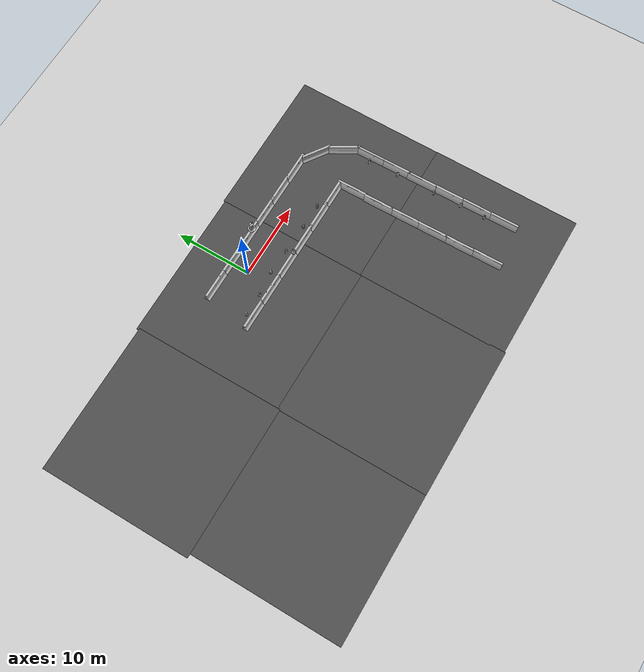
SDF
<sdf version="1.7">
 <world name="default">
  <light name="sun" type="directional">
   <pose>0 0 10 0 -0 0</pose>
   <diffuse>0.8 0.8 0.8 1</diffuse>
   <specular>0.2 0.2 0.2 1</specular>
   <attenuation>
    <range>1000</range>
    <constant>0.9</constant>
    <linear>0.01</linear>
    <quadratic>0.001</quadratic>
   </attenuation>
   <direction>-0.5 0.1 -0.9</direction>
   <spot><inner_angle>0</inner_angle><outer_angle>0</outer_angle><falloff>0</falloff></spot>
  </light>
  <model name="ground_plane">
   <static>1</static>
   <link name="link">
    <collision name="collision">
     <geometry><plane><normal>0 0 1</normal><size>100 100</size></plane></geometry>
     <surface><friction><ode><mu>100</mu><mu2>50</mu2></ode></friction></surface>
    </collision>
    <visual name="visual">
     <cast_shadows>0</cast_shadows>
     <geometry><plane><normal>0 0 1</normal><size>100 100</size></plane></geometry>
     <material>
      <script><uri>file://media/materials/scripts/gazebo.material</uri><name>Gazebo/Grey</name></script>
     </material>
    </visual>
   </link>
  </model>
  <gravity>0 0 -9.8</gravity>
  <magnetic_field>6e-06 2.3e-05 -4.2e-05</magnetic_field>
  <atmosphere type="adiabatic"/>
  <physics type="ode">
   <max_step_size>0.001</max_step_size>
   <real_time_factor>1</real_time_factor>
   <real_time_update_rate>1000</real_time_update_rate>
  </physics>
  <scene><ambient>0.4 0.4 0.4 1</ambient><background>0.7 0.7 0.7 1</background><shadows>1</shadows></scene>
  <audio><device>default</device></audio>
  <spherical_coordinates>
   <surface_model>EARTH_WGS84</surface_model>
   <latitude_deg>0</latitude_deg>
   <longitude_deg>0</longitude_deg>
   <elevation>0</elevation>
   <heading_deg>0</heading_deg>
  </spherical_coordinates>
  <model name="asphalt_plane_clone">
   <static>1</static>
   <link name="link">
    <collision name="collision"><geometry><box><size>20 20 0.1</size></box></geometry></collision>
    <visual name="visual">
     <cast_shadows>0</cast_shadows>
     <geometry><box><size>20 20 0.1</size></box></geometry>
     <material>
      <script>
       <uri>model://asphalt_plane/materials/scripts</uri>
       <uri>model://asphalt_plane/materials/textures</uri>
       <name>vrc/asphalt</name>
      </script>
     </material>
    </visual>
   </link>
   <pose>-3.01179 -22.2842 0 0 -0 0</pose>
  </model>
  <model name="asphalt_plane_clone_0">
   <static>1</static>
   <link name="link">
    <collision name="collision"><geometry><box><size>20 20 0.1</size></box></geometry></collision>
    <visual name="visual">
     <cast_shadows>0</cast_shadows>
     <geometry><box><size>20 20 0.1</size></box></geometry>
     <material>
      <script>
       <uri>model://asphalt_plane/materials/scripts</uri>
       <uri>model://asphalt_plane/materials/textures</uri>
       <name>vrc/asphalt</name>
      </script>
     </material>
    </visual>
   </link>
   <pose>16.8182 -2.14207 0 0 -0 0</pose>
  </model>
  <model name="asphalt_plane_clone_1">
   <static>1</static>
   <link name="link">
    <collision name="collision"><geometry><box><size>20 20 0.1</size></box></geometry></collision>
    <visual name="visual">
     <cast_shadows>0</cast_shadows>
     <geometry><box><size>20 20 0.1</size></box></geometry>
     <material>
      <script>
       <uri>model://asphalt_plane/materials/scripts</uri>
       <uri>model://asphalt_plane/materials/textures</uri>
       <name>vrc/asphalt</name>
      </script>
     </material>
    </visual>
   </link>
   <pose>16.8522 -22.1217 0 0 -0 0</pose>
  </model>
  <model name="asphalt_plane_clone_2">
   <static>1</static>
   <link name="link">
    <collision name="collision"><geometry><box><size>20 20 0.1</size></box></geometry></collision>
    <visual name="visual">
     <cast_shadows>0</cast_shadows>
     <geometry><box><size>20 20 0.1</size></box></geometry>
     <material>
      <script>
       <uri>model://asphalt_plane/materials/scripts</uri>
       <uri>model://asphalt_plane/materials/textures</uri>
       <name>vrc/asphalt</name>
      </script>
     </material>
    </visual>
   </link>
   <pose>-22.8836 -2.60564 0 0 -0 0</pose>
  </model>
  <model name="asphalt_plane_clone_3">
   <static>1</static>
   <link name="link">
    <collision name="collision"><geometry><box><size>20 20 0.1</size></box></geometry></collision>
    <visual name="visual">
     <cast_shadows>0</cast_shadows>
     <geometry><box><size>20 20 0.1</size></box></geometry>
     <material>
      <script>
       <uri>model://asphalt_plane/materials/scripts</uri>
       <uri>model://asphalt_plane/materials/textures</uri>
       <name>vrc/asphalt</name>
      </script>
     </material>
    </visual>
   </link>
   <pose>-22.3337 -22.2724 0 0 -0 0</pose>
  </model>
  <model name="asphalt_plane_clone_2_clone">
   <static>1</static>
   <link name="link">
    <collision name="collision"><geometry><box><size>20 20 0.1</size></box></geometry></collision>
    <visual name="visual">
     <cast_shadows>0</cast_shadows>
     <geometry><box><size>20 20 0.1</size></box></geometry>
     <material>
      <script>
       <uri>model://asphalt_plane/materials/scripts</uri>
       <uri>model://asphalt_plane/materials/textures</uri>
       <name>vrc/asphalt</name>
      </script>
     </material>
    </visual>
   </link>
   <pose>-3.13209 -2.31797 0 0 -0 0</pose>
  </model>
  <model name="jersey_barrier">
   <static>1</static>
   <link name="link">
    <visual name="visual">
     <geometry><mesh><uri>model://jersey_barrier/meshes/jersey_barrier.dae</uri></mesh></geometry>
    </visual>
    <collision name="upright">
     <pose>0 0 0.5715 0 -0 0</pose>
     <geometry><box><size>4.06542 0.3063 1.143</size></box></geometry>
    </collision>
    <collision name="base">
     <pose>0 0 0.032258 0 -0 0</pose>
     <geometry><box><size>4.06542 0.8107 0.064516</size></box></geometry>
    </collision>
    <collision name="base2">
     <pose>0 0 0.1 0 -0 0</pose>
     <geometry><box><size>4.06542 0.65 0.1</size></box></geometry>
    </collision>
    <collision name="base3">
     <pose>0 0 0.2 0 -0 0</pose>
     <geometry><box><size>4.06542 0.5 0.1</size></box></geometry>
    </collision>
    <collision name="left-angle">
     <pose>0 -0.224 0.2401 0.9 -0 0</pose>
     <geometry><box><size>4.06542 0.5 0.064516</size></box></geometry>
    </collision>
    <collision name="right-angle">
     <pose>0 0.224 0.2401 -0.9 0 0</pose>
     <geometry><box><size>4.06542 0.5 0.064516</size></box></geometry>
    </collision>
   </link>
   <pose>-4.51443 -3.68065 0 0 -0 0</pose>
  </model>
  <model name="jersey_barrier_clone_0">
   <static>1</static>
   <link name="link">
    <visual name="visual">
     <geometry><mesh><uri>model://jersey_barrier/meshes/jersey_barrier.dae</uri></mesh></geometry>
    </visual>
    <collision name="upright">
     <pose>0 0 0.5715 0 -0 0</pose>
     <geometry><box><size>4.06542 0.3063 1.143</size></box></geometry>
    </collision>
    <collision name="base">
     <pose>0 0 0.032258 0 -0 0</pose>
     <geometry><box><size>4.06542 0.8107 0.064516</size></box></geometry>
    </collision>
    <collision name="base2">
     <pose>0 0 0.1 0 -0 0</pose>
     <geometry><box><size>4.06542 0.65 0.1</size></box></geometry>
    </collision>
    <collision name="base3">
     <pose>0 0 0.2 0 -0 0</pose>
     <geometry><box><size>4.06542 0.5 0.1</size></box></geometry>
    </collision>
    <collision name="left-angle">
     <pose>0 -0.224 0.2401 0.9 -0 0</pose>
     <geometry><box><size>4.06542 0.5 0.064516</size></box></geometry>
    </collision>
    <collision name="right-angle">
     <pose>0 0.224 0.2401 -0.9 0 0</pose>
     <geometry><box><size>4.06542 0.5 0.064516</size></box></geometry>
    </collision>
   </link>
   <pose>-0.565037 -3.69991 0 0 -0 0</pose>
  </model>
  <model name="jersey_barrier_clone_0_clone">
   <static>1</static>
   <link name="link">
    <visual name="visual">
     <geometry><mesh><uri>model://jersey_barrier/meshes/jersey_barrier.dae</uri></mesh></geometry>
    </visual>
    <collision name="upright">
     <pose>0 0 0.5715 0 -0 0</pose>
     <geometry><box><size>4.06542 0.3063 1.143</size></box></geometry>
    </collision>
    <collision name="base">
     <pose>0 0 0.032258 0 -0 0</pose>
     <geometry><box><size>4.06542 0.8107 0.064516</size></box></geometry>
    </collision>
    <collision name="base2">
     <pose>0 0 0.1 0 -0 0</pose>
     <geometry><box><size>4.06542 0.65 0.1</size></box></geometry>
    </collision>
    <collision name="base3">
     <pose>0 0 0.2 0 -0 0</pose>
     <geometry><box><size>4.06542 0.5 0.1</size></box></geometry>
    </collision>
    <collision name="left-angle">
     <pose>0 -0.224 0.2401 0.9 -0 0</pose>
     <geometry><box><size>4.06542 0.5 0.064516</size></box></geometry>
    </collision>
    <collision name="right-angle">
     <pose>0 0.224 0.2401 -0.9 0 0</pose>
     <geometry><box><size>4.06542 0.5 0.064516</size></box></geometry>
    </collision>
   </link>
   <pose>3.2857 -3.69456 0 0 -0 0</pose>
  </model>
  <model name="jersey_barrier_clone_0_clone_0">
   <static>1</static>
   <link name="link">
    <visual name="visual">
     <geometry><mesh><uri>model://jersey_barrier/meshes/jersey_barrier.dae</uri></mesh></geometry>
    </visual>
    <collision name="upright">
     <pose>0 0 0.5715 0 -0 0</pose>
     <geometry><box><size>4.06542 0.3063 1.143</size></box></geometry>
    </collision>
    <collision name="base">
     <pose>0 0 0.032258 0 -0 0</pose>
     <geometry><box><size>4.06542 0.8107 0.064516</size></box></geometry>
    </collision>
    <collision name="base2">
     <pose>0 0 0.1 0 -0 0</pose>
     <geometry><box><size>4.06542 0.65 0.1</size></box></geometry>
    </collision>
    <collision name="base3">
     <pose>0 0 0.2 0 -0 0</pose>
     <geometry><box><size>4.06542 0.5 0.1</size></box></geometry>
    </collision>
    <collision name="left-angle">
     <pose>0 -0.224 0.2401 0.9 -0 0</pose>
     <geometry><box><size>4.06542 0.5 0.064516</size></box></geometry>
    </collision>
    <collision name="right-angle">
     <pose>0 0.224 0.2401 -0.9 0 0</pose>
     <geometry><box><size>4.06542 0.5 0.064516</size></box></geometry>
    </collision>
   </link>
   <pose>-3.53275 2.39443 0 0 -0 0</pose>
  </model>
  <model name="jersey_barrier_clone_0_clone_1">
   <static>1</static>
   <link name="link">
    <visual name="visual">
     <geometry><mesh><uri>model://jersey_barrier/meshes/jersey_barrier.dae</uri></mesh></geometry>
    </visual>
    <collision name="upright">
     <pose>0 0 0.5715 0 -0 0</pose>
     <geometry><box><size>4.06542 0.3063 1.143</size></box></geometry>
    </collision>
    <collision name="base">
     <pose>0 0 0.032258 0 -0 0</pose>
     <geometry><box><size>4.06542 0.8107 0.064516</size></box></geometry>
    </collision>
    <collision name="base2">
     <pose>0 0 0.1 0 -0 0</pose>
     <geometry><box><size>4.06542 0.65 0.1</size></box></geometry>
    </collision>
    <collision name="base3">
     <pose>0 0 0.2 0 -0 0</pose>
     <geometry><box><size>4.06542 0.5 0.1</size></box></geometry>
    </collision>
    <collision name="left-angle">
     <pose>0 -0.224 0.2401 0.9 -0 0</pose>
     <geometry><box><size>4.06542 0.5 0.064516</size></box></geometry>
    </collision>
    <collision name="right-angle">
     <pose>0 0.224 0.2401 -0.9 0 0</pose>
     <geometry><box><size>4.06542 0.5 0.064516</size></box></geometry>
    </collision>
   </link>
   <pose>0.391347 2.40381 0 0 -0 0</pose>
  </model>
  <model name="jersey_barrier_clone_0_clone_2">
   <static>1</static>
   <link name="link">
    <visual name="visual">
     <geometry><mesh><uri>model://jersey_barrier/meshes/jersey_barrier.dae</uri></mesh></geometry>
    </visual>
    <collision name="upright">
     <pose>0 0 0.5715 0 -0 0</pose>
     <geometry><box><size>4.06542 0.3063 1.143</size></box></geometry>
    </collision>
    <collision name="base">
     <pose>0 0 0.032258 0 -0 0</pose>
     <geometry><box><size>4.06542 0.8107 0.064516</size></box></geometry>
    </collision>
    <collision name="base2">
     <pose>0 0 0.1 0 -0 0</pose>
     <geometry><box><size>4.06542 0.65 0.1</size></box></geometry>
    </collision>
    <collision name="base3">
     <pose>0 0 0.2 0 -0 0</pose>
     <geometry><box><size>4.06542 0.5 0.1</size></box></geometry>
    </collision>
    <collision name="left-angle">
     <pose>0 -0.224 0.2401 0.9 -0 0</pose>
     <geometry><box><size>4.06542 0.5 0.064516</size></box></geometry>
    </collision>
    <collision name="right-angle">
     <pose>0 0.224 0.2401 -0.9 0 0</pose>
     <geometry><box><size>4.06542 0.5 0.064516</size></box></geometry>
    </collision>
   </link>
   <pose>4.19323 2.40606 0 0 -0 0</pose>
  </model>
  <model name="jersey_barrier_clone_0_clone_3">
   <static>1</static>
   <link name="link">
    <visual name="visual">
     <geometry><mesh><uri>model://jersey_barrier/meshes/jersey_barrier.dae</uri></mesh></geometry>
    </visual>
    <collision name="upright">
     <pose>0 0 0.5715 0 -0 0</pose>
     <geometry><box><size>4.06542 0.3063 1.143</size></box></geometry>
    </collision>
    <collision name="base">
     <pose>0 0 0.032258 0 -0 0</pose>
     <geometry><box><size>4.06542 0.8107 0.064516</size></box></geometry>
    </collision>
    <collision name="base2">
     <pose>0 0 0.1 0 -0 0</pose>
     <geometry><box><size>4.06542 0.65 0.1</size></box></geometry>
    </collision>
    <collision name="base3">
     <pose>0 0 0.2 0 -0 0</pose>
     <geometry><box><size>4.06542 0.5 0.1</size></box></geometry>
    </collision>
    <collision name="left-angle">
     <pose>0 -0.224 0.2401 0.9 -0 0</pose>
     <geometry><box><size>4.06542 0.5 0.064516</size></box></geometry>
    </collision>
    <collision name="right-angle">
     <pose>0 0.224 0.2401 -0.9 0 0</pose>
     <geometry><box><size>4.06542 0.5 0.064516</size></box></geometry>
    </collision>
   </link>
   <pose>8.07925 2.39398 0 0 -0 0</pose>
  </model>
  <model name="jersey_barrier_clone_0_clone_4">
   <static>1</static>
   <link name="link">
    <visual name="visual">
     <geometry><mesh><uri>model://jersey_barrier/meshes/jersey_barrier.dae</uri></mesh></geometry>
    </visual>
    <collision name="upright">
     <pose>0 0 0.5715 0 -0 0</pose>
     <geometry><box><size>4.06542 0.3063 1.143</size></box></geometry>
    </collision>
    <collision name="base">
     <pose>0 0 0.032258 0 -0 0</pose>
     <geometry><box><size>4.06542 0.8107 0.064516</size></box></geometry>
    </collision>
    <collision name="base2">
     <pose>0 0 0.1 0 -0 0</pose>
     <geometry><box><size>4.06542 0.65 0.1</size></box></geometry>
    </collision>
    <collision name="base3">
     <pose>0 0 0.2 0 -0 0</pose>
     <geometry><box><size>4.06542 0.5 0.1</size></box></geometry>
    </collision>
    <collision name="left-angle">
     <pose>0 -0.224 0.2401 0.9 -0 0</pose>
     <geometry><box><size>4.06542 0.5 0.064516</size></box></geometry>
    </collision>
    <collision name="right-angle">
     <pose>0 0.224 0.2401 -0.9 0 0</pose>
     <geometry><box><size>4.06542 0.5 0.064516</size></box></geometry>
    </collision>
   </link>
   <pose>7.173 -3.70425 0 0 -0 0</pose>
  </model>
  <model name="jersey_barrier_clone_0_clone_5">
   <static>1</static>
   <link name="link">
    <visual name="visual">
     <geometry><mesh><uri>model://jersey_barrier/meshes/jersey_barrier.dae</uri></mesh></geometry>
    </visual>
    <collision name="upright">
     <pose>0 0 0.5715 0 -0 0</pose>
     <geometry><box><size>4.06542 0.3063 1.143</size></box></geometry>
    </collision>
    <collision name="base">
     <pose>0 0 0.032258 0 -0 0</pose>
     <geometry><box><size>4.06542 0.8107 0.064516</size></box></geometry>
    </collision>
    <collision name="base2">
     <pose>0 0 0.1 0 -0 0</pose>
     <geometry><box><size>4.06542 0.65 0.1</size></box></geometry>
    </collision>
    <collision name="base3">
     <pose>0 0 0.2 0 -0 0</pose>
     <geometry><box><size>4.06542 0.5 0.1</size></box></geometry>
    </collision>
    <collision name="left-angle">
     <pose>0 -0.224 0.2401 0.9 -0 0</pose>
     <geometry><box><size>4.06542 0.5 0.064516</size></box></geometry>
    </collision>
    <collision name="right-angle">
     <pose>0 0.224 0.2401 -0.9 0 0</pose>
     <geometry><box><size>4.06542 0.5 0.064516</size></box></geometry>
    </collision>
   </link>
   <pose>10.8948 -3.71728 0 0 -0 0</pose>
  </model>
  <model name="jersey_barrier_clone_0_clone_6">
   <static>1</static>
   <link name="link">
    <visual name="visual">
     <geometry><mesh><uri>model://jersey_barrier/meshes/jersey_barrier.dae</uri></mesh></geometry>
    </visual>
    <collision name="upright">
     <pose>0 0 0.5715 0 -0 0</pose>
     <geometry><box><size>4.06542 0.3063 1.143</size></box></geometry>
    </collision>
    <collision name="base">
     <pose>0 0 0.032258 0 -0 0</pose>
     <geometry><box><size>4.06542 0.8107 0.064516</size></box></geometry>
    </collision>
    <collision name="base2">
     <pose>0 0 0.1 0 -0 0</pose>
     <geometry><box><size>4.06542 0.65 0.1</size></box></geometry>
    </collision>
    <collision name="base3">
     <pose>0 0 0.2 0 -0 0</pose>
     <geometry><box><size>4.06542 0.5 0.1</size></box></geometry>
    </collision>
    <collision name="left-angle">
     <pose>0 -0.224 0.2401 0.9 -0 0</pose>
     <geometry><box><size>4.06542 0.5 0.064516</size></box></geometry>
    </collision>
    <collision name="right-angle">
     <pose>0 0.224 0.2401 -0.9 0 0</pose>
     <geometry><box><size>4.06542 0.5 0.064516</size></box></geometry>
    </collision>
   </link>
   <pose>11.6108 2.38327 0 0 -0 0</pose>
  </model>
  <model name="jersey_barrier_clone_0_clone_7">
   <static>1</static>
   <link name="link">
    <visual name="visual">
     <geometry><mesh><uri>model://jersey_barrier/meshes/jersey_barrier.dae</uri></mesh></geometry>
    </visual>
    <collision name="upright">
     <pose>0 0 0.5715 0 -0 0</pose>
     <geometry><box><size>4.06542 0.3063 1.143</size></box></geometry>
    </collision>
    <collision name="base">
     <pose>0 0 0.032258 0 -0 0</pose>
     <geometry><box><size>4.06542 0.8107 0.064516</size></box></geometry>
    </collision>
    <collision name="base2">
     <pose>0 0 0.1 0 -0 0</pose>
     <geometry><box><size>4.06542 0.65 0.1</size></box></geometry>
    </collision>
    <collision name="base3">
     <pose>0 0 0.2 0 -0 0</pose>
     <geometry><box><size>4.06542 0.5 0.1</size></box></geometry>
    </collision>
    <collision name="left-angle">
     <pose>0 -0.224 0.2401 0.9 -0 0</pose>
     <geometry><box><size>4.06542 0.5 0.064516</size></box></geometry>
    </collision>
    <collision name="right-angle">
     <pose>0 0.224 0.2401 -0.9 0 0</pose>
     <geometry><box><size>4.06542 0.5 0.064516</size></box></geometry>
    </collision>
   </link>
   <pose>14.4509 -3.71568 0 0 -0 0</pose>
  </model>
  <model name="jersey_barrier_clone_0_clone_8">
   <static>1</static>
   <link name="link">
    <visual name="visual">
     <geometry><mesh><uri>model://jersey_barrier/meshes/jersey_barrier.dae</uri></mesh></geometry>
    </visual>
    <collision name="upright">
     <pose>0 0 0.5715 0 -0 0</pose>
     <geometry><box><size>4.06542 0.3063 1.143</size></box></geometry>
    </collision>
    <collision name="base">
     <pose>0 0 0.032258 0 -0 0</pose>
     <geometry><box><size>4.06542 0.8107 0.064516</size></box></geometry>
    </collision>
    <collision name="base2">
     <pose>0 0 0.1 0 -0 0</pose>
     <geometry><box><size>4.06542 0.65 0.1</size></box></geometry>
    </collision>
    <collision name="base3">
     <pose>0 0 0.2 0 -0 0</pose>
     <geometry><box><size>4.06542 0.5 0.1</size></box></geometry>
    </collision>
    <collision name="left-angle">
     <pose>0 -0.224 0.2401 0.9 -0 0</pose>
     <geometry><box><size>4.06542 0.5 0.064516</size></box></geometry>
    </collision>
    <collision name="right-angle">
     <pose>0 0.224 0.2401 -0.9 0 0</pose>
     <geometry><box><size>4.06542 0.5 0.064516</size></box></geometry>
    </collision>
   </link>
   <pose>15.3009 2.33524 0 0 -0 0</pose>
  </model>
  <model name="jersey_barrier_clone_0_clone_9">
   <static>1</static>
   <link name="link">
    <visual name="visual">
     <geometry><mesh><uri>model://jersey_barrier/meshes/jersey_barrier.dae</uri></mesh></geometry>
    </visual>
    <collision name="upright">
     <pose>0 0 0.5715 0 -0 0</pose>
     <geometry><box><size>4.06542 0.3063 1.143</size></box></geometry>
    </collision>
    <collision name="base">
     <pose>0 0 0.032258 0 -0 0</pose>
     <geometry><box><size>4.06542 0.8107 0.064516</size></box></geometry>
    </collision>
    <collision name="base2">
     <pose>0 0 0.1 0 -0 0</pose>
     <geometry><box><size>4.06542 0.65 0.1</size></box></geometry>
    </collision>
    <collision name="base3">
     <pose>0 0 0.2 0 -0 0</pose>
     <geometry><box><size>4.06542 0.5 0.1</size></box></geometry>
    </collision>
    <collision name="left-angle">
     <pose>0 -0.224 0.2401 0.9 -0 0</pose>
     <geometry><box><size>4.06542 0.5 0.064516</size></box></geometry>
    </collision>
    <collision name="right-angle">
     <pose>0 0.224 0.2401 -0.9 0 0</pose>
     <geometry><box><size>4.06542 0.5 0.064516</size></box></geometry>
    </collision>
   </link>
   <pose>18.4854 1.0881 0 0 0 -0.599053</pose>
  </model>
  <model name="jersey_barrier_clone_0_clone_9_clone">
   <static>1</static>
   <link name="link">
    <visual name="visual">
     <geometry><mesh><uri>model://jersey_barrier/meshes/jersey_barrier.dae</uri></mesh></geometry>
    </visual>
    <collision name="upright">
     <pose>0 0 0.5715 0 -0 0</pose>
     <geometry><box><size>4.06542 0.3063 1.143</size></box></geometry>
    </collision>
    <collision name="base">
     <pose>0 0 0.032258 0 -0 0</pose>
     <geometry><box><size>4.06542 0.8107 0.064516</size></box></geometry>
    </collision>
    <collision name="base2">
     <pose>0 0 0.1 0 -0 0</pose>
     <geometry><box><size>4.06542 0.65 0.1</size></box></geometry>
    </collision>
    <collision name="base3">
     <pose>0 0 0.2 0 -0 0</pose>
     <geometry><box><size>4.06542 0.5 0.1</size></box></geometry>
    </collision>
    <collision name="left-angle">
     <pose>0 -0.224 0.2401 0.9 -0 0</pose>
     <geometry><box><size>4.06542 0.5 0.064516</size></box></geometry>
    </collision>
    <collision name="right-angle">
     <pose>0 0.224 0.2401 -0.9 0 0</pose>
     <geometry><box><size>4.06542 0.5 0.064516</size></box></geometry>
    </collision>
   </link>
   <pose>20.8855 -1.70847 0 0 0 -1.03907</pose>
  </model>
  <model name="jersey_barrier_clone_0_clone_9_clone_clone">
   <static>1</static>
   <link name="link">
    <visual name="visual">
     <geometry><mesh><uri>model://jersey_barrier/meshes/jersey_barrier.dae</uri></mesh></geometry>
    </visual>
    <collision name="upright">
     <pose>0 0 0.5715 0 -0 0</pose>
     <geometry><box><size>4.06542 0.3063 1.143</size></box></geometry>
    </collision>
    <collision name="base">
     <pose>0 0 0.032258 0 -0 0</pose>
     <geometry><box><size>4.06542 0.8107 0.064516</size></box></geometry>
    </collision>
    <collision name="base2">
     <pose>0 0 0.1 0 -0 0</pose>
     <geometry><box><size>4.06542 0.65 0.1</size></box></geometry>
    </collision>
    <collision name="base3">
     <pose>0 0 0.2 0 -0 0</pose>
     <geometry><box><size>4.06542 0.5 0.1</size></box></geometry>
    </collision>
    <collision name="left-angle">
     <pose>0 -0.224 0.2401 0.9 -0 0</pose>
     <geometry><box><size>4.06542 0.5 0.064516</size></box></geometry>
    </collision>
    <collision name="right-angle">
     <pose>0 0.224 0.2401 -0.9 0 0</pose>
     <geometry><box><size>4.06542 0.5 0.064516</size></box></geometry>
    </collision>
   </link>
   <pose>21.8231 -5.02489 0 0 0 -1.55708</pose>
  </model>
  <model name="jersey_barrier_clone_0_clone_9_clone_clone_clone">
   <static>1</static>
   <link name="link">
    <visual name="visual">
     <geometry><mesh><uri>model://jersey_barrier/meshes/jersey_barrier.dae</uri></mesh></geometry>
    </visual>
    <collision name="upright">
     <pose>0 0 0.5715 0 -0 0</pose>
     <geometry><box><size>4.06542 0.3063 1.143</size></box></geometry>
    </collision>
    <collision name="base">
     <pose>0 0 0.032258 0 -0 0</pose>
     <geometry><box><size>4.06542 0.8107 0.064516</size></box></geometry>
    </collision>
    <collision name="base2">
     <pose>0 0 0.1 0 -0 0</pose>
     <geometry><box><size>4.06542 0.65 0.1</size></box></geometry>
    </collision>
    <collision name="base3">
     <pose>0 0 0.2 0 -0 0</pose>
     <geometry><box><size>4.06542 0.5 0.1</size></box></geometry>
    </collision>
    <collision name="left-angle">
     <pose>0 -0.224 0.2401 0.9 -0 0</pose>
     <geometry><box><size>4.06542 0.5 0.064516</size></box></geometry>
    </collision>
    <collision name="right-angle">
     <pose>0 0.224 0.2401 -0.9 0 0</pose>
     <geometry><box><size>4.06542 0.5 0.064516</size></box></geometry>
    </collision>
   </link>
   <pose>16.3593 -5.49202 0 0 0 -1.55708</pose>
  </model>
  <model name="jersey_barrier_clone_0_clone_9_clone_clone_clone_clone">
   <static>1</static>
   <link name="link">
    <visual name="visual">
     <geometry><mesh><uri>model://jersey_barrier/meshes/jersey_barrier.dae</uri></mesh></geometry>
    </visual>
    <collision name="upright">
     <pose>0 0 0.5715 0 -0 0</pose>
     <geometry><box><size>4.06542 0.3063 1.143</size></box></geometry>
    </collision>
    <collision name="base">
     <pose>0 0 0.032258 0 -0 0</pose>
     <geometry><box><size>4.06542 0.8107 0.064516</size></box></geometry>
    </collision>
    <collision name="base2">
     <pose>0 0 0.1 0 -0 0</pose>
     <geometry><box><size>4.06542 0.65 0.1</size></box></geometry>
    </collision>
    <collision name="base3">
     <pose>0 0 0.2 0 -0 0</pose>
     <geometry><box><size>4.06542 0.5 0.1</size></box></geometry>
    </collision>
    <collision name="left-angle">
     <pose>0 -0.224 0.2401 0.9 -0 0</pose>
     <geometry><box><size>4.06542 0.5 0.064516</size></box></geometry>
    </collision>
    <collision name="right-angle">
     <pose>0 0.224 0.2401 -0.9 0 0</pose>
     <geometry><box><size>4.06542 0.5 0.064516</size></box></geometry>
    </collision>
   </link>
   <pose>16.309 -9.38497 0 0 0 -1.55708</pose>
  </model>
  <model name="jersey_barrier_clone_0_clone_9_clone_clone_clone_clone_0">
   <static>1</static>
   <link name="link">
    <visual name="visual">
     <geometry><mesh><uri>model://jersey_barrier/meshes/jersey_barrier.dae</uri></mesh></geometry>
    </visual>
    <collision name="upright">
     <pose>0 0 0.5715 0 -0 0</pose>
     <geometry><box><size>4.06542 0.3063 1.143</size></box></geometry>
    </collision>
    <collision name="base">
     <pose>0 0 0.032258 0 -0 0</pose>
     <geometry><box><size>4.06542 0.8107 0.064516</size></box></geometry>
    </collision>
    <collision name="base2">
     <pose>0 0 0.1 0 -0 0</pose>
     <geometry><box><size>4.06542 0.65 0.1</size></box></geometry>
    </collision>
    <collision name="base3">
     <pose>0 0 0.2 0 -0 0</pose>
     <geometry><box><size>4.06542 0.5 0.1</size></box></geometry>
    </collision>
    <collision name="left-angle">
     <pose>0 -0.224 0.2401 0.9 -0 0</pose>
     <geometry><box><size>4.06542 0.5 0.064516</size></box></geometry>
    </collision>
    <collision name="right-angle">
     <pose>0 0.224 0.2401 -0.9 0 0</pose>
     <geometry><box><size>4.06542 0.5 0.064516</size></box></geometry>
    </collision>
   </link>
   <pose>16.3703 -13.1473 0 0 0 -1.55708</pose>
  </model>
  <model name="jersey_barrier_clone_0_clone_9_clone_clone_clone_clone_1">
   <static>1</static>
   <link name="link">
    <visual name="visual">
     <geometry><mesh><uri>model://jersey_barrier/meshes/jersey_barrier.dae</uri></mesh></geometry>
    </visual>
    <collision name="upright">
     <pose>0 0 0.5715 0 -0 0</pose>
     <geometry><box><size>4.06542 0.3063 1.143</size></box></geometry>
    </collision>
    <collision name="base">
     <pose>0 0 0.032258 0 -0 0</pose>
     <geometry><box><size>4.06542 0.8107 0.064516</size></box></geometry>
    </collision>
    <collision name="base2">
     <pose>0 0 0.1 0 -0 0</pose>
     <geometry><box><size>4.06542 0.65 0.1</size></box></geometry>
    </collision>
    <collision name="base3">
     <pose>0 0 0.2 0 -0 0</pose>
     <geometry><box><size>4.06542 0.5 0.1</size></box></geometry>
    </collision>
    <collision name="left-angle">
     <pose>0 -0.224 0.2401 0.9 -0 0</pose>
     <geometry><box><size>4.06542 0.5 0.064516</size></box></geometry>
    </collision>
    <collision name="right-angle">
     <pose>0 0.224 0.2401 -0.9 0 0</pose>
     <geometry><box><size>4.06542 0.5 0.064516</size></box></geometry>
    </collision>
   </link>
   <pose>16.4287 -17.0374 0 0 0 -1.55708</pose>
  </model>
  <model name="jersey_barrier_clone_0_clone_9_clone_clone_clone_clone_2">
   <static>1</static>
   <link name="link">
    <visual name="visual">
     <geometry><mesh><uri>model://jersey_barrier/meshes/jersey_barrier.dae</uri></mesh></geometry>
    </visual>
    <collision name="upright">
     <pose>0 0 0.5715 0 -0 0</pose>
     <geometry><box><size>4.06542 0.3063 1.143</size></box></geometry>
    </collision>
    <collision name="base">
     <pose>0 0 0.032258 0 -0 0</pose>
     <geometry><box><size>4.06542 0.8107 0.064516</size></box></geometry>
    </collision>
    <collision name="base2">
     <pose>0 0 0.1 0 -0 0</pose>
     <geometry><box><size>4.06542 0.65 0.1</size></box></geometry>
    </collision>
    <collision name="base3">
     <pose>0 0 0.2 0 -0 0</pose>
     <geometry><box><size>4.06542 0.5 0.1</size></box></geometry>
    </collision>
    <collision name="left-angle">
     <pose>0 -0.224 0.2401 0.9 -0 0</pose>
     <geometry><box><size>4.06542 0.5 0.064516</size></box></geometry>
    </collision>
    <collision name="right-angle">
     <pose>0 0.224 0.2401 -0.9 0 0</pose>
     <geometry><box><size>4.06542 0.5 0.064516</size></box></geometry>
    </collision>
   </link>
   <pose>16.4928 -20.7893 0 0 0 -1.55708</pose>
  </model>
  <model name="jersey_barrier_clone_0_clone_9_clone_clone_clone_clone_3">
   <static>1</static>
   <link name="link">
    <visual name="visual">
     <geometry><mesh><uri>model://jersey_barrier/meshes/jersey_barrier.dae</uri></mesh></geometry>
    </visual>
    <collision name="upright">
     <pose>0 0 0.5715 0 -0 0</pose>
     <geometry><box><size>4.06542 0.3063 1.143</size></box></geometry>
    </collision>
    <collision name="base">
     <pose>0 0 0.032258 0 -0 0</pose>
     <geometry><box><size>4.06542 0.8107 0.064516</size></box></geometry>
    </collision>
    <collision name="base2">
     <pose>0 0 0.1 0 -0 0</pose>
     <geometry><box><size>4.06542 0.65 0.1</size></box></geometry>
    </collision>
    <collision name="base3">
     <pose>0 0 0.2 0 -0 0</pose>
     <geometry><box><size>4.06542 0.5 0.1</size></box></geometry>
    </collision>
    <collision name="left-angle">
     <pose>0 -0.224 0.2401 0.9 -0 0</pose>
     <geometry><box><size>4.06542 0.5 0.064516</size></box></geometry>
    </collision>
    <collision name="right-angle">
     <pose>0 0.224 0.2401 -0.9 0 0</pose>
     <geometry><box><size>4.06542 0.5 0.064516</size></box></geometry>
    </collision>
   </link>
   <pose>16.5868 -24.6843 0 0 0 -1.55708</pose>
  </model>
  <model name="jersey_barrier_clone_0_clone_9_clone_clone_clone_clone_4">
   <static>1</static>
   <link name="link">
    <visual name="visual">
     <geometry><mesh><uri>model://jersey_barrier/meshes/jersey_barrier.dae</uri></mesh></geometry>
    </visual>
    <collision name="upright">
     <pose>0 0 0.5715 0 -0 0</pose>
     <geometry><box><size>4.06542 0.3063 1.143</size></box></geometry>
    </collision>
    <collision name="base">
     <pose>0 0 0.032258 0 -0 0</pose>
     <geometry><box><size>4.06542 0.8107 0.064516</size></box></geometry>
    </collision>
    <collision name="base2">
     <pose>0 0 0.1 0 -0 0</pose>
     <geometry><box><size>4.06542 0.65 0.1</size></box></geometry>
    </collision>
    <collision name="base3">
     <pose>0 0 0.2 0 -0 0</pose>
     <geometry><box><size>4.06542 0.5 0.1</size></box></geometry>
    </collision>
    <collision name="left-angle">
     <pose>0 -0.224 0.2401 0.9 -0 0</pose>
     <geometry><box><size>4.06542 0.5 0.064516</size></box></geometry>
    </collision>
    <collision name="right-angle">
     <pose>0 0.224 0.2401 -0.9 0 0</pose>
     <geometry><box><size>4.06542 0.5 0.064516</size></box></geometry>
    </collision>
   </link>
   <pose>21.8792 -8.82999 0 0 0 -1.55708</pose>
  </model>
  <model name="jersey_barrier_clone_0_clone_9_clone_clone_clone_clone_5">
   <static>1</static>
   <link name="link">
    <visual name="visual">
     <geometry><mesh><uri>model://jersey_barrier/meshes/jersey_barrier.dae</uri></mesh></geometry>
    </visual>
    <collision name="upright">
     <pose>0 0 0.5715 0 -0 0</pose>
     <geometry><box><size>4.06542 0.3063 1.143</size></box></geometry>
    </collision>
    <collision name="base">
     <pose>0 0 0.032258 0 -0 0</pose>
     <geometry><box><size>4.06542 0.8107 0.064516</size></box></geometry>
    </collision>
    <collision name="base2">
     <pose>0 0 0.1 0 -0 0</pose>
     <geometry><box><size>4.06542 0.65 0.1</size></box></geometry>
    </collision>
    <collision name="base3">
     <pose>0 0 0.2 0 -0 0</pose>
     <geometry><box><size>4.06542 0.5 0.1</size></box></geometry>
    </collision>
    <collision name="left-angle">
     <pose>0 -0.224 0.2401 0.9 -0 0</pose>
     <geometry><box><size>4.06542 0.5 0.064516</size></box></geometry>
    </collision>
    <collision name="right-angle">
     <pose>0 0.224 0.2401 -0.9 0 0</pose>
     <geometry><box><size>4.06542 0.5 0.064516</size></box></geometry>
    </collision>
   </link>
   <pose>21.9058 -12.5772 0 0 0 -1.55708</pose>
  </model>
  <model name="jersey_barrier_clone_0_clone_9_clone_clone_clone_clone_6">
   <static>1</static>
   <link name="link">
    <visual name="visual">
     <geometry><mesh><uri>model://jersey_barrier/meshes/jersey_barrier.dae</uri></mesh></geometry>
    </visual>
    <collision name="upright">
     <pose>0 0 0.5715 0 -0 0</pose>
     <geometry><box><size>4.06542 0.3063 1.143</size></box></geometry>
    </collision>
    <collision name="base">
     <pose>0 0 0.032258 0 -0 0</pose>
     <geometry><box><size>4.06542 0.8107 0.064516</size></box></geometry>
    </collision>
    <collision name="base2">
     <pose>0 0 0.1 0 -0 0</pose>
     <geometry><box><size>4.06542 0.65 0.1</size></box></geometry>
    </collision>
    <collision name="base3">
     <pose>0 0 0.2 0 -0 0</pose>
     <geometry><box><size>4.06542 0.5 0.1</size></box></geometry>
    </collision>
    <collision name="left-angle">
     <pose>0 -0.224 0.2401 0.9 -0 0</pose>
     <geometry><box><size>4.06542 0.5 0.064516</size></box></geometry>
    </collision>
    <collision name="right-angle">
     <pose>0 0.224 0.2401 -0.9 0 0</pose>
     <geometry><box><size>4.06542 0.5 0.064516</size></box></geometry>
    </collision>
   </link>
   <pose>21.9953 -16.4282 0 0 0 -1.55708</pose>
  </model>
  <model name="jersey_barrier_clone_0_clone_9_clone_clone_clone_clone_7">
   <static>1</static>
   <link name="link">
    <visual name="visual">
     <geometry><mesh><uri>model://jersey_barrier/meshes/jersey_barrier.dae</uri></mesh></geometry>
    </visual>
    <collision name="upright">
     <pose>0 0 0.5715 0 -0 0</pose>
     <geometry><box><size>4.06542 0.3063 1.143</size></box></geometry>
    </collision>
    <collision name="base">
     <pose>0 0 0.032258 0 -0 0</pose>
     <geometry><box><size>4.06542 0.8107 0.064516</size></box></geometry>
    </collision>
    <collision name="base2">
     <pose>0 0 0.1 0 -0 0</pose>
     <geometry><box><size>4.06542 0.65 0.1</size></box></geometry>
    </collision>
    <collision name="base3">
     <pose>0 0 0.2 0 -0 0</pose>
     <geometry><box><size>4.06542 0.5 0.1</size></box></geometry>
    </collision>
    <collision name="left-angle">
     <pose>0 -0.224 0.2401 0.9 -0 0</pose>
     <geometry><box><size>4.06542 0.5 0.064516</size></box></geometry>
    </collision>
    <collision name="right-angle">
     <pose>0 0.224 0.2401 -0.9 0 0</pose>
     <geometry><box><size>4.06542 0.5 0.064516</size></box></geometry>
    </collision>
   </link>
   <pose>22.0676 -20.3206 0 0 0 -1.55708</pose>
  </model>
  <model name="jersey_barrier_clone_0_clone_9_clone_clone_clone_clone_8">
   <static>1</static>
   <link name="link">
    <visual name="visual">
     <geometry><mesh><uri>model://jersey_barrier/meshes/jersey_barrier.dae</uri></mesh></geometry>
    </visual>
    <collision name="upright">
     <pose>0 0 0.5715 0 -0 0</pose>
     <geometry><box><size>4.06542 0.3063 1.143</size></box></geometry>
    </collision>
    <collision name="base">
     <pose>0 0 0.032258 0 -0 0</pose>
     <geometry><box><size>4.06542 0.8107 0.064516</size></box></geometry>
    </collision>
    <collision name="base2">
     <pose>0 0 0.1 0 -0 0</pose>
     <geometry><box><size>4.06542 0.65 0.1</size></box></geometry>
    </collision>
    <collision name="base3">
     <pose>0 0 0.2 0 -0 0</pose>
     <geometry><box><size>4.06542 0.5 0.1</size></box></geometry>
    </collision>
    <collision name="left-angle">
     <pose>0 -0.224 0.2401 0.9 -0 0</pose>
     <geometry><box><size>4.06542 0.5 0.064516</size></box></geometry>
    </collision>
    <collision name="right-angle">
     <pose>0 0.224 0.2401 -0.9 0 0</pose>
     <geometry><box><size>4.06542 0.5 0.064516</size></box></geometry>
    </collision>
   </link>
   <pose>22.1374 -24.0546 0 0 0 -1.55708</pose>
  </model>
  <model name="fire_hydrant">
   <static>1</static>
   <link name="link">
    <collision name="collision">
     <geometry><mesh><uri>model://fire_hydrant/meshes/fire_hydrant.dae</uri></mesh></geometry>
    </collision>
    <visual name="visual">
     <geometry><mesh><uri>model://fire_hydrant/meshes/fire_hydrant.dae</uri></mesh></geometry>
    </visual>
   </link>
   <pose>-4.80267 -2.82732 0 0 -0 0</pose>
  </model>
  <model name="fire_hydrant_clone">
   <static>1</static>
   <link name="link">
    <collision name="collision">
     <geometry><mesh><uri>model://fire_hydrant/meshes/fire_hydrant.dae</uri></mesh></geometry>
    </collision>
    <visual name="visual">
     <geometry><mesh><uri>model://fire_hydrant/meshes/fire_hydrant.dae</uri></mesh></geometry>
    </visual>
   </link>
   <pose>-1.77104 -2.87414 0 0 -0 0</pose>
  </model>
  <model name="fire_hydrant_clone_0">
   <static>1</static>
   <link name="link">
    <collision name="collision">
     <geometry><mesh><uri>model://fire_hydrant/meshes/fire_hydrant.dae</uri></mesh></geometry>
    </collision>
    <visual name="visual">
     <geometry><mesh><uri>model://fire_hydrant/meshes/fire_hydrant.dae</uri></mesh></geometry>
    </visual>
   </link>
   <pose>1.43794 -2.48978 0 0 -0 0</pose>
  </model>
  <model name="fire_hydrant_clone_1">
   <static>1</static>
   <link name="link">
    <collision name="collision">
     <geometry><mesh><uri>model://fire_hydrant/meshes/fire_hydrant.dae</uri></mesh></geometry>
    </collision>
    <visual name="visual">
     <geometry><mesh><uri>model://fire_hydrant/meshes/fire_hydrant.dae</uri></mesh></geometry>
    </visual>
   </link>
   <pose>4.80847 -2.63376 0 0 -0 0</pose>
  </model>
  <model name="fire_hydrant_clone_2">
   <static>1</static>
   <link name="link">
    <collision name="collision">
     <geometry><mesh><uri>model://fire_hydrant/meshes/fire_hydrant.dae</uri></mesh></geometry>
    </collision>
    <visual name="visual">
     <geometry><mesh><uri>model://fire_hydrant/meshes/fire_hydrant.dae</uri></mesh></geometry>
    </visual>
   </link>
   <pose>8.80364 -2.74413 0 0 -0 0</pose>
  </model>
  <model name="fire_hydrant_clone_3">
   <static>1</static>
   <link name="link">
    <collision name="collision">
     <geometry><mesh><uri>model://fire_hydrant/meshes/fire_hydrant.dae</uri></mesh></geometry>
    </collision>
    <visual name="visual">
     <geometry><mesh><uri>model://fire_hydrant/meshes/fire_hydrant.dae</uri></mesh></geometry>
    </visual>
   </link>
   <pose>12.1199 -2.77369 0 0 -0 0</pose>
  </model>
  <model name="fire_hydrant_clone_4">
   <static>1</static>
   <link name="link">
    <collision name="collision">
     <geometry><mesh><uri>model://fire_hydrant/meshes/fire_hydrant.dae</uri></mesh></geometry>
    </collision>
    <visual name="visual">
     <geometry><mesh><uri>model://fire_hydrant/meshes/fire_hydrant.dae</uri></mesh></geometry>
    </visual>
   </link>
   <pose>21.0501 -5.3067 0 0 -0 0</pose>
  </model>
  <model name="fire_hydrant_clone_5">
   <static>1</static>
   <link name="link">
    <collision name="collision">
     <geometry><mesh><uri>model://fire_hydrant/meshes/fire_hydrant.dae</uri></mesh></geometry>
    </collision>
    <visual name="visual">
     <geometry><mesh><uri>model://fire_hydrant/meshes/fire_hydrant.dae</uri></mesh></geometry>
    </visual>
   </link>
   <pose>21.2208 -9.36523 0 0 -0 0</pose>
  </model>
  <model name="fire_hydrant_clone_6">
   <static>1</static>
   <link name="link">
    <collision name="collision">
     <geometry><mesh><uri>model://fire_hydrant/meshes/fire_hydrant.dae</uri></mesh></geometry>
    </collision>
    <visual name="visual">
     <geometry><mesh><uri>model://fire_hydrant/meshes/fire_hydrant.dae</uri></mesh></geometry>
    </visual>
   </link>
   <pose>21.2821 -14.5831 0 0 -0 0</pose>
  </model>
  <model name="fire_hydrant_clone_7">
   <static>1</static>
   <link name="link">
    <collision name="collision">
     <geometry><mesh><uri>model://fire_hydrant/meshes/fire_hydrant.dae</uri></mesh></geometry>
    </collision>
    <visual name="visual">
     <geometry><mesh><uri>model://fire_hydrant/meshes/fire_hydrant.dae</uri></mesh></geometry>
    </visual>
   </link>
   <pose>21.4957 -18.3924 0 0 -0 0</pose>
  </model>
  <model name="fire_hydrant_clone_8">
   <static>1</static>
   <link name="link">
    <collision name="collision">
     <geometry><mesh><uri>model://fire_hydrant/meshes/fire_hydrant.dae</uri></mesh></geometry>
    </collision>
    <visual name="visual">
     <geometry><mesh><uri>model://fire_hydrant/meshes/fire_hydrant.dae</uri></mesh></geometry>
    </visual>
   </link>
   <pose>21.5342 -21.7013 0 0 -0 0</pose>
  </model>
  <model name="coke_can">
   <link name="link">
    <inertial>
     <pose>0 0 0.06 0 -0 0</pose>
     <mass>0.39</mass>
     <inertia>
      <ixx>0.00055575</ixx>
      <ixy>0</ixy>
      <ixz>0</ixz>
      <iyy>0.00055575</iyy>
      <iyz>0</iyz>
      <izz>0.0001755</izz>
     </inertia>
    </inertial>
    <collision name="collision">
     <pose>0.003937 0.004724 -0.18 0 -0 0</pose>
     <geometry><mesh><uri>model://coke_can/meshes/coke_can.dae</uri></mesh></geometry>
     <surface>
      <friction><ode><mu>1</mu><mu2>1</mu2></ode></friction>
      <contact><ode><kp>1e+07</kp><kd>1</kd><min_depth>0.001</min_depth><max_vel>0.1</max_vel></ode></contact>
     </surface>
    </collision>
    <visual name="visual">
     <pose>0.003937 0.004724 -0.18 0 -0 0</pose>
     <geometry><mesh><uri>model://coke_can/meshes/coke_can.dae</uri></mesh></geometry>
    </visual>
   </link>
   <pose>-2.69632 -3.66989 1.13998 -0.007294 -0.041133 0.039914</pose>
  </model>
  <model name="coke_can_clone">
   <link name="link">
    <inertial>
     <pose>0 0 0.06 0 -0 0</pose>
     <mass>0.39</mass>
     <inertia>
      <ixx>0.00055575</ixx>
      <ixy>0</ixy>
      <ixz>0</ixz>
      <iyy>0.00055575</iyy>
      <iyz>0</iyz>
      <izz>0.0001755</izz>
     </inertia>
    </inertial>
    <collision name="collision">
     <pose>0.003937 0.004724 -0.18 0 -0 0</pose>
     <geometry><mesh><uri>model://coke_can/meshes/coke_can.dae</uri></mesh></geometry>
     <surface>
      <friction><ode><mu>1</mu><mu2>1</mu2></ode></friction>
      <contact><ode><kp>1e+07</kp><kd>1</kd><min_depth>0.001</min_depth><max_vel>0.1</max_vel></ode></contact>
     </surface>
    </collision>
    <visual name="visual">
     <pose>0.003937 0.004724 -0.18 0 -0 0</pose>
     <geometry><mesh><uri>model://coke_can/meshes/coke_can.dae</uri></mesh></geometry>
    </visual>
   </link>
   <pose>-1.34796 -3.65262 1.13999 -0.00726 -0.039423 0.039937</pose>
  </model>
  <model name="coke_can_clone_clone">
   <link name="link">
    <inertial>
     <pose>0 0 0.06 0 -0 0</pose>
     <mass>0.39</mass>
     <inertia>
      <ixx>0.00055575</ixx>
      <ixy>0</ixy>
      <ixz>0</ixz>
      <iyy>0.00055575</iyy>
      <iyz>0</iyz>
      <izz>0.0001755</izz>
     </inertia>
    </inertial>
    <collision name="collision">
     <pose>0.003937 0.004724 -0.18 0 -0 0</pose>
     <geometry><mesh><uri>model://coke_can/meshes/coke_can.dae</uri></mesh></geometry>
     <surface>
      <friction><ode><mu>1</mu><mu2>1</mu2></ode></friction>
      <contact><ode><kp>1e+07</kp><kd>1</kd><min_depth>0.001</min_depth><max_vel>0.1</max_vel></ode></contact>
     </surface>
    </collision>
    <visual name="visual">
     <pose>0.003937 0.004724 -0.18 0 -0 0</pose>
     <geometry><mesh><uri>model://coke_can/meshes/coke_can.dae</uri></mesh></geometry>
    </visual>
   </link>
   <pose>-0.300175 -3.69213 1.13998 -0.007257 -0.041021 0.039925</pose>
  </model>
  <model name="coke_can_clone_0">
   <link name="link">
    <inertial>
     <pose>0 0 0.06 0 -0 0</pose>
     <mass>0.39</mass>
     <inertia>
      <ixx>0.00055575</ixx>
      <ixy>0</ixy>
      <ixz>0</ixz>
      <iyy>0.00055575</iyy>
      <iyz>0</iyz>
      <izz>0.0001755</izz>
     </inertia>
    </inertial>
    <collision name="collision">
     <pose>0.003937 0.004724 -0.18 0 -0 0</pose>
     <geometry><mesh><uri>model://coke_can/meshes/coke_can.dae</uri></mesh></geometry>
     <surface>
      <friction><ode><mu>1</mu><mu2>1</mu2></ode></friction>
      <contact><ode><kp>1e+07</kp><kd>1</kd><min_depth>0.001</min_depth><max_vel>0.1</max_vel></ode></contact>
     </surface>
    </collision>
    <visual name="visual">
     <pose>0.003937 0.004724 -0.18 0 -0 0</pose>
     <geometry><mesh><uri>model://coke_can/meshes/coke_can.dae</uri></mesh></geometry>
    </visual>
   </link>
   <pose>-0.515713 2.39839 1.13998 -0.007303 -0.041109 0.039917</pose>
  </model>
  <model name="coke_can_clone_0_clone">
   <link name="link">
    <inertial>
     <pose>0 0 0.06 0 -0 0</pose>
     <mass>0.39</mass>
     <inertia>
      <ixx>0.00055575</ixx>
      <ixy>0</ixy>
      <ixz>0</ixz>
      <iyy>0.00055575</iyy>
      <iyz>0</iyz>
      <izz>0.0001755</izz>
     </inertia>
    </inertial>
    <collision name="collision">
     <pose>0.003937 0.004724 -0.18 0 -0 0</pose>
     <geometry><mesh><uri>model://coke_can/meshes/coke_can.dae</uri></mesh></geometry>
     <surface>
      <friction><ode><mu>1</mu><mu2>1</mu2></ode></friction>
      <contact><ode><kp>1e+07</kp><kd>1</kd><min_depth>0.001</min_depth><max_vel>0.1</max_vel></ode></contact>
     </surface>
    </collision>
    <visual name="visual">
     <pose>0.003937 0.004724 -0.18 0 -0 0</pose>
     <geometry><mesh><uri>model://coke_can/meshes/coke_can.dae</uri></mesh></geometry>
    </visual>
   </link>
   <pose>-2.47124 2.36383 1.13998 -0.007274 -0.041145 0.039915</pose>
  </model>
  <model name="Construction Barrel">
   <link name="link">
    <inertial>
     <pose>0 0 0.4 0 -0 0</pose>
     <mass>500</mass>
     <inertia><ixx>51.2096</ixx><iyy>51.2096</iyy><izz>25</izz><ixy>0</ixy><ixz>0</ixz><iyz>0</iyz></inertia>
    </inertial>
    <collision name="collision">
     <geometry><mesh><uri>model://construction_barrel/meshes/construction_barrel.dae</uri></mesh></geometry>
    </collision>
    <visual name="visual">
     <geometry><mesh><uri>model://construction_barrel/meshes/construction_barrel.dae</uri></mesh></geometry>
    </visual>
   </link>
   <pose>4.97592 2.43606 1.143 0 -2e-06 -5.9e-05</pose>
  </model>
  <model name="Construction Cone">
   <link name="link">
    <collision name="collision">
     <geometry>
      <mesh><scale>10 10 10</scale><uri>model://construction_cone/meshes/construction_cone.dae</uri></mesh>
     </geometry>
    </collision>
    <visual name="visual">
     <geometry>
      <mesh><scale>10 10 10</scale><uri>model://construction_cone/meshes/construction_cone.dae</uri></mesh>
     </geometry>
    </visual>
    <inertial>
     <inertia><ixx>1</ixx><ixy>0</ixy><ixz>0</ixz><iyy>1</iyy><iyz>0</iyz><izz>1</izz></inertia>
     <mass>1</mass>
    </inertial>
   </link>
   <pose>4.81945 -3.6962 1.143 -3e-06 1e-06 0</pose>
  </model>
 </world>
</sdf>
